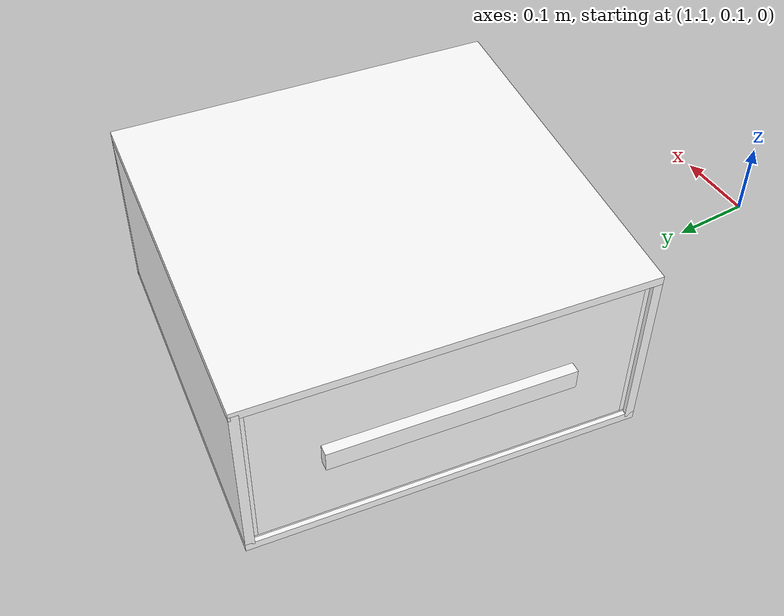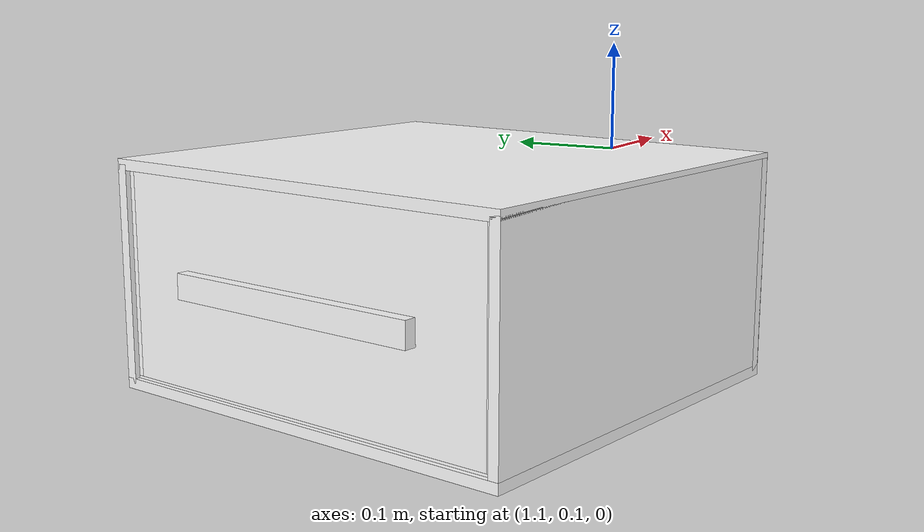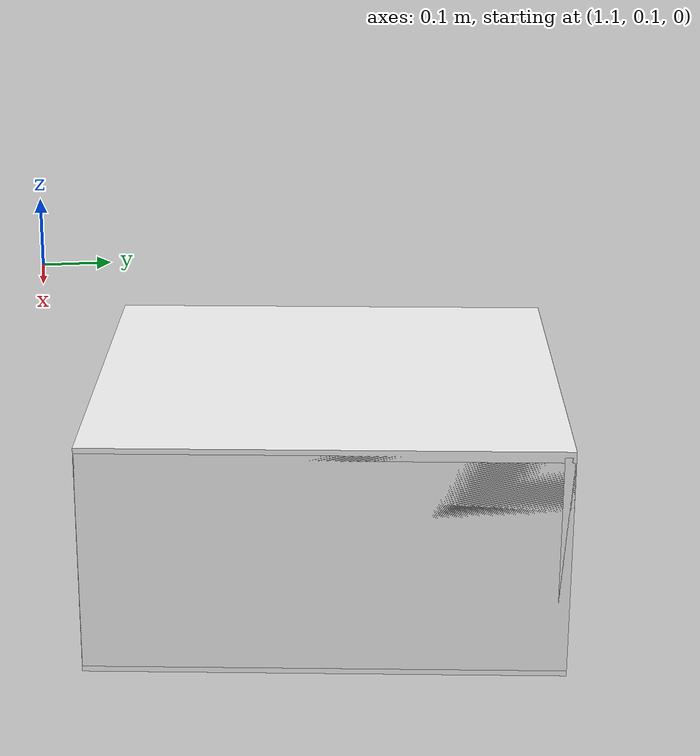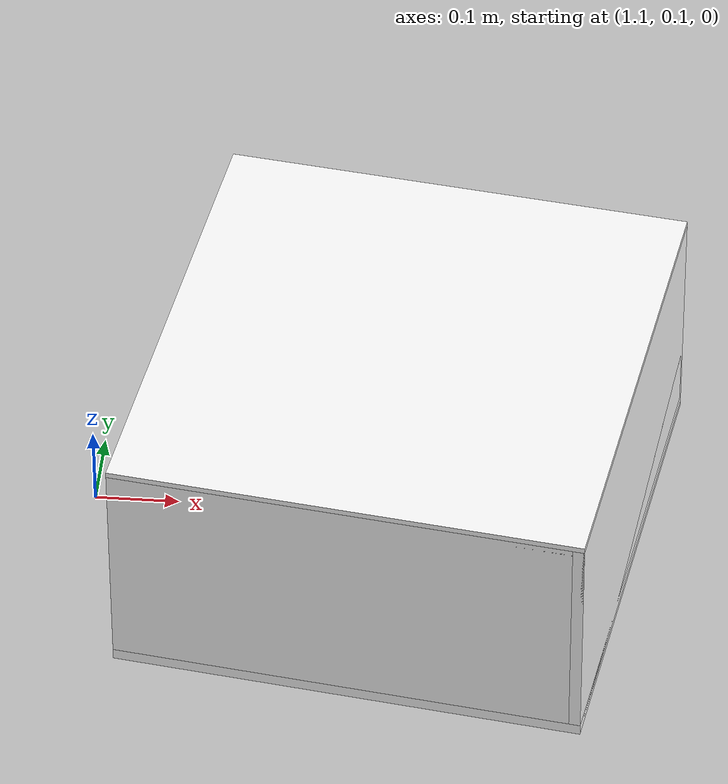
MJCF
<mujoco model="drawer">
        <compiler angle="radian" eulerseq='zxy' />
        <option gravity = "0 0 0" />
        <option>
            <flag contact = "disable"/>
        </option>
        <statistic	extent="1.0" center="0.0 0.0 0.0"/>
        <visual>
            <map fogstart="3" fogend="5" force="0.1" znear=" 0.100000 " zfar=" 12.000000 "/>
        </visual>
        <size njmax="500" nconmax="100" />
        <actuator>
            <velocity joint="drawerJ" name="viva_revolution" kv='10'></velocity>
        </actuator>
        <asset>
            <texture builtin="flat" name="objtex" height="32" width="32" rgb1="1 1 1" type="cube"></texture>
            <texture builtin="flat" name="handletex" height="32" width="32" rgb1="1 1 1" type="cube"></texture>
            <material name="geomObj" shininess="0.03" specular="0.75" texture="objtex"></material>
            <material name="geomHandle" shininess="0.03" specular="0.75" texture="handletex"></material>
        </asset>
        <worldbody>
            <body name="cabinet_bottom" pos= " 1.433062 0.483823 -0.371090 "  quat= " 0.073299 0.000000 0.000000 0.997310" >
                <inertial pos="0 0 0" mass="1" diaginertia="1 1 1" />
                <geom size= " 0.295431 0.311428 0.007259 "  type="box" material="geomObj" name="b"/>
                <body name="cabinet_left" pos= " 0.000000 -0.304169 0.147332 " >
                    <inertial pos="0 0 0" mass="1" diaginertia="1 1 1" />
                    <geom size= " 0.295431 0.007259 0.147332 "  type="box" material="geomObj" name="c" />
                </body>
                <body name="cabinet_right" pos= " 0.000000 0.304169 0.147332 " >
                    <inertial pos="0 0 0" mass="1" diaginertia="1 1 1" />
                    <geom size= " 0.295431 0.007259 0.147332 "  type="box" material="geomObj" name="d" />
                </body>
                <body name="cabinet_top" pos= " 0.000000 0.000000 0.294663 " >
                    <inertial pos="0 0 0" mass="1" diaginertia="1 1 1" />
                    <geom size= " 0.295431 0.311428 0.007259 "  type="box" material="geomObj" name="e"/>
                </body>
                <body name="cabinet_back" pos= " -0.288172 0.000000 0.147332 "  >
                    <inertial pos="0 0 0" mass="1" diaginertia="1 1 1" />
                    <geom size= " 0.007259 0.311428 0.147332 "  type="box" material="geomObj" name="f" />
                </body>
                <body name="drawer" pos= " 0.000000 0.000000 0.003630 "  >
                    <geom size= " 0.288172 0.304169 0.007259 "  type="box" material="geomObj" name="ddddfadfadsfac" />
                    <joint name="drawerJ" pos="0 0 0" axis="1 0 0" type="slide" limited="true" range= "0  0.44314607977867126 "  />
                    <inertial pos="0 0 0" mass="1" diaginertia="1 1 1" />
                    <body name="drawer_left" pos= " 0.000000 -0.296910 0.147332 " >
                        <inertial pos="0 0 0" mass="1" diaginertia="1 1 1" />
                        <geom size= " 0.288172 0.007259 0.140072 "  type="box" material="geomObj" name="ddc" />
                    </body>
                    <body name="drawer_right" pos= " 0.000000 0.296910 0.147332 " >
                        <inertial pos="0 0 0" mass="1" diaginertia="1 1 1" />
                        <geom size= " 0.288172 0.007259 0.140072 "  type="box" material="geomObj" name="dddd" />
                    </body>
                    <body name="drawer_front" pos= " 0.280912 0.000000 0.147332 " >
                        <inertial pos="0 0 0" mass="1" diaginertia="1 1 1" />
                        <geom size= " 0.007259 0.304169 0.140072 "  type="box" material="geomObj" name="eeeee"/>
                    </body>
                    <body name="drawer_back" pos= " -0.288172 0.000000 0.147332 "  >
                        <inertial pos="0 0 0" mass="1" diaginertia="1 1 1" />
                        <geom size= " 0.007259 0.304169 0.140072 "  type="box" material="geomObj" name="fffff" />
                    </body>
                    <body name="knob" pos= " 0.295431 0.000000 0.147332 " >
                        <inertial pos="0 0 0" mass="0.1" diaginertia="0.1 0.1 0.1" />
                        <geom size= " 0.009837 0.190155 0.017097 "  pos="0 0 0" type="box" material="geomHandle" name="handle"/>
                    </body>
                </body>
            </body>
            <body name="external_camera_body_0" pos="0.0 0 0.00">
                <camera euler="-1.57 1.57 0.0" fovy=" 54.280851 " name="external_camera_0" pos="0.0 0 0"></camera>
                <inertial pos= " 0.00 0.0 0.000000 " mass="1" diaginertia="1 1 1" />
                <joint name="cam_j" pos="0.0 0 0" axis = "1 0 0" type="free" />
            </body>
        </worldbody>
    </mujoco>
